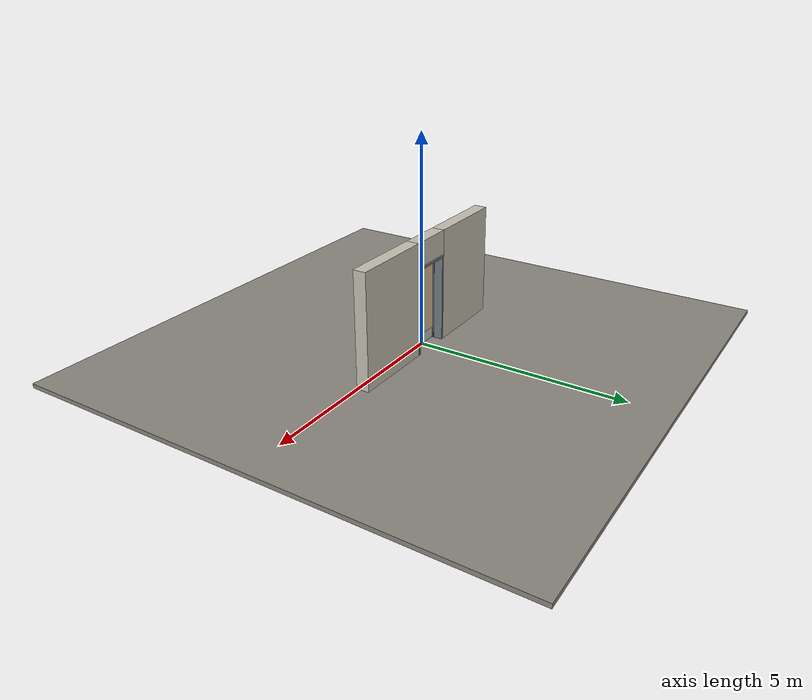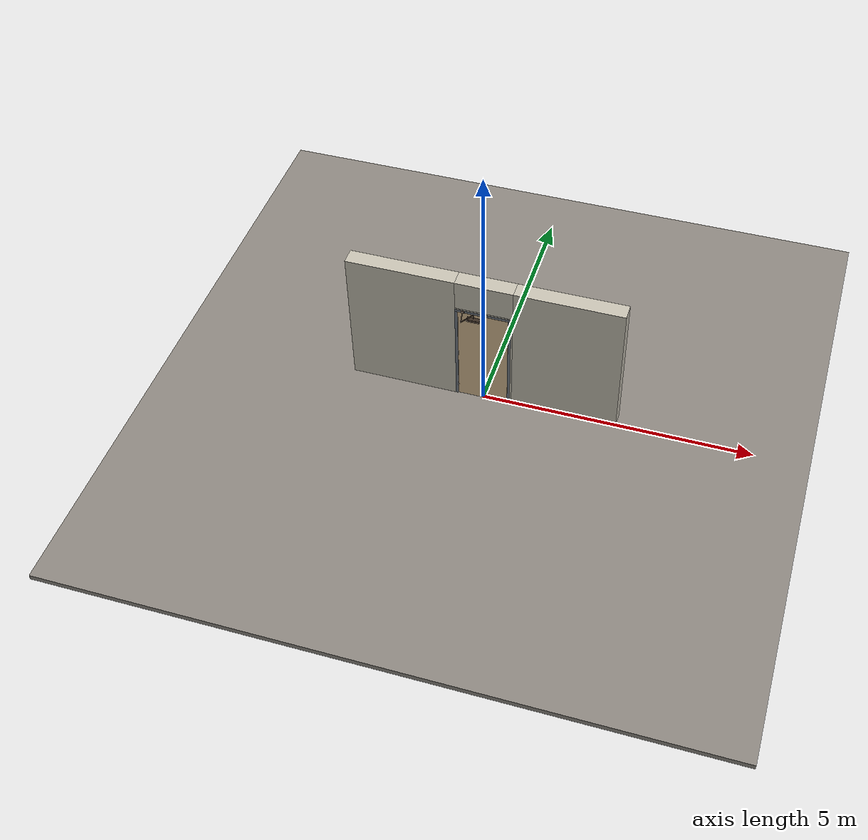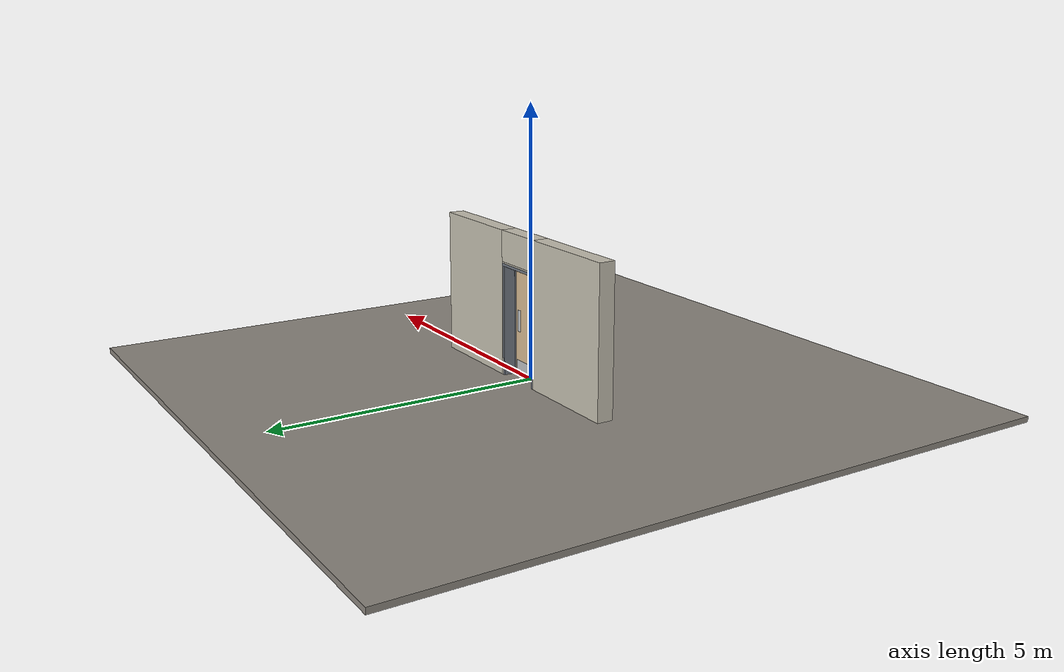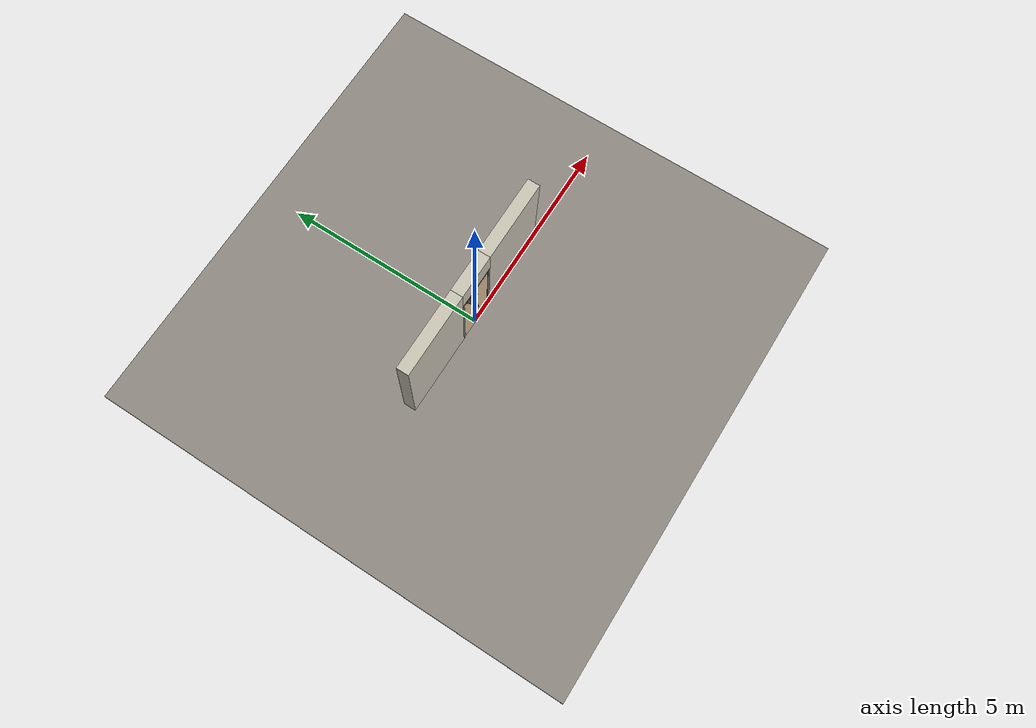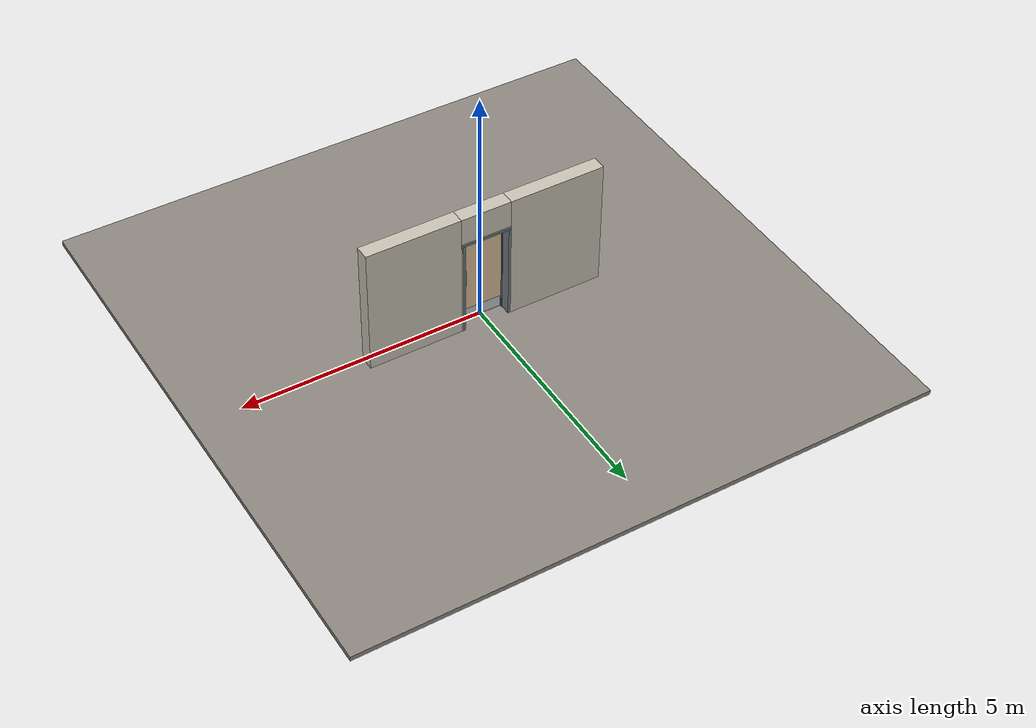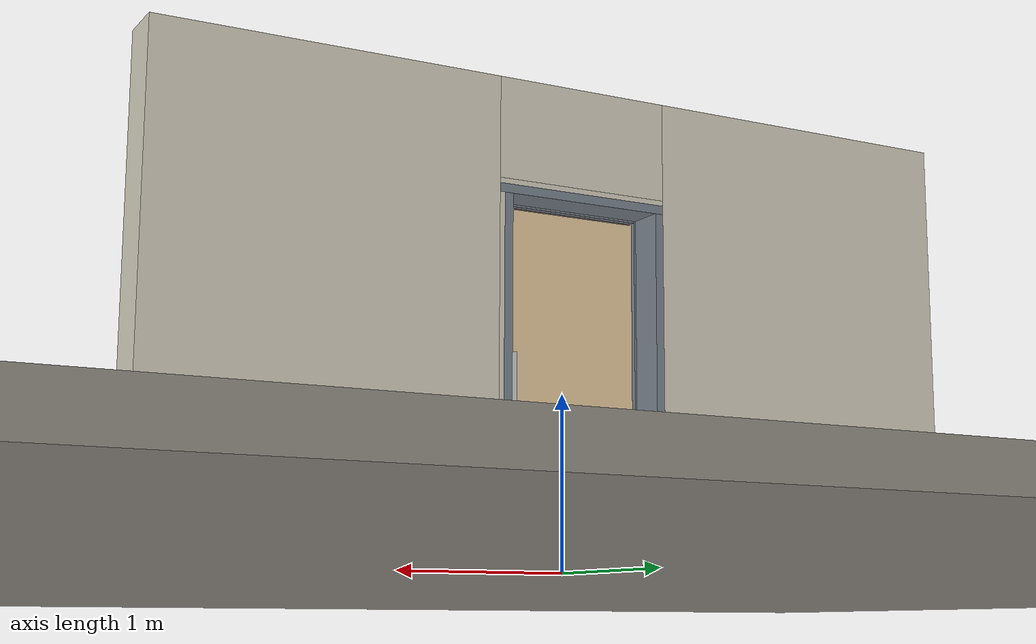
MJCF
<?xml version="1.0" ?>
<mujoco model="db0869_swing_single_full">
  <compiler angle="radian" meshdir="../../hardware" texturedir="../../textures" autolimits="true" inertiafromgeom="false"/>
  <option timestep="0.002" integrator="implicitfast" cone="elliptic" impratio="10" noslip_iterations="3">
    <flag multiccd="enable"/>
  </option>
  <size memory="16M"/>
  <default>
    <geom condim="4" solref="0.005 1" solimp="0.95 0.99 0.001"/>
    <joint solreflimit="0.005 1" solimplimit="0.95 0.99 0.001"/>
    <tendon solreflimit="0.005 1"/>
    <equality solref="0.002 1"/>
  </default>
  <visual>
    <headlight ambient="0.4 0.4 0.4" diffuse="0.7 0.7 0.7" specular="0.2 0.2 0.2"/>
    <quality shadowsize="4096"/>
    <map znear="0.01" zfar="60"/>
  </visual>
  <asset>
    <mesh name="closer_body_b226fdb10b" file="closer_body_b226fdb10b.obj"/>
    <mesh name="hinge_e22b26c0c1" file="hinge_e22b26c0c1.obj"/>
    <mesh name="hinge_jamb_e1d088f8dc" file="hinge_jamb_e1d088f8dc.obj"/>
    <material name="mat_floor" rgba="0.55 0.53 0.5 1" specular="0.2" shininess="0.15" reflectance="0"/>
    <material name="mat_wall" rgba="0.78 0.76 0.7 1" specular="0.2" shininess="0.1" reflectance="0"/>
    <material name="mat_leaf" rgba="0.85 0.74 0.58 1" specular="0.2" shininess="0.5" reflectance="0"/>
    <material name="mat_hinge" rgba="0.65 0.66 0.68 1" specular="0.74" shininess="0.5" reflectance="0.36"/>
    <material name="mat_op_stainless" rgba="0.75 0.76 0.77 1" specular="0.8" shininess="0.65" reflectance="0.4"/>
    <material name="mat_frame" rgba="0.45 0.48 0.52 1" specular="0.32" shininess="0.6" reflectance="0.08"/>
    <material name="mat_seal" rgba="0.1 0.1 0.1 1" specular="0.2" shininess="0.1" reflectance="0"/>
    <material name="mat_closer" rgba="0.22 0.17 0.13 1" specular="0.8" shininess="0.6" reflectance="0.4"/>
    <material name="mat_kick" rgba="0.75 0.76 0.77 1" specular="0.8" shininess="0.65" reflectance="0.4"/>
    <texture name="skybox" type="skybox" builtin="gradient" rgb1="0.6 0.7 0.85" rgb2="0.9 0.92 0.95" width="256" height="256"/>
  </asset>
  <worldbody>
    <light name="sun" pos="1.5 -2.5 4" dir="-0.3 0.5 -0.8" directional="true" diffuse="0.8 0.8 0.8" specular="0.3 0.3 0.3" castshadow="true"/>
    <light name="fill" pos="-1.5 2.5 3" dir="0.3 -0.5 -0.7" directional="true" diffuse="0.35 0.35 0.4" castshadow="false"/>
    <camera name="robot_view" pos="0 -2.421187 1.734312" xyaxes="1 0 0 0 0.26963 0.962964" fovy="52"/>
    <camera name="far_view" pos="0 2.663187 1.734312" xyaxes="-1 0 0 0 -0.26963 0.962964" fovy="52"/>
    <camera name="iso" pos="1.932062 -2.014438 2.141063" xyaxes="0.741536 0.670913 0 -0.242917 0.268487 0.932151" fovy="46"/>
    <camera name="detail_handle" pos="0.5335 -0.679 1.296" xyaxes="0.97561 0.219512 0 -0.070934 0.315262 0.94635" fovy="38"/>
    <geom name="floor" type="box" size="6 6 0.05" pos="0 0 -0.05" material="mat_floor" group="0" contype="1" conaffinity="1" friction="0.8 0.005 0.0001" density="2400"/>
    <geom name="wall_left" type="box" size="0.99475 0.15 1.35" pos="-1.50525 0.121 1.35" material="mat_wall" group="0" contype="1" conaffinity="1" friction="0.6 0.005 0.0001" density="800"/>
    <geom name="wall_right" type="box" size="0.97975 0.15 1.35" pos="1.52025 0.121 1.35" material="mat_wall" group="0" contype="1" conaffinity="1" friction="0.6 0.005 0.0001" density="800"/>
    <geom name="wall_header" type="box" size="0.5255 0.15 0.2875" pos="0.015 0.121 2.4125" material="mat_wall" group="0" contype="1" conaffinity="1" friction="0.6 0.005 0.0001" density="800"/>
    <geom name="hinge_0_jamb" type="mesh" mesh="hinge_jamb_e1d088f8dc" pos="-0.4575 -0.029 0.259" material="mat_hinge" group="1" contype="0" conaffinity="0" density="7850"/>
    <geom name="hinge_1_jamb" type="mesh" mesh="hinge_jamb_e1d088f8dc" pos="-0.4575 -0.029 1.025" material="mat_hinge" group="1" contype="0" conaffinity="0" density="7850"/>
    <geom name="hinge_2_jamb" type="mesh" mesh="hinge_jamb_e1d088f8dc" pos="-0.4575 -0.029 1.861" material="mat_hinge" group="1" contype="0" conaffinity="0" density="7850"/>
    <geom name="jamb_hinge" type="box" size="0.025 0.15 1.0225" pos="-0.4855 0.121 1.0225" material="mat_frame" group="0" contype="1" conaffinity="1" friction="0.6 0.005 0.0001" density="300"/>
    <geom name="jamb_strike" type="box" size="0.025 0.15 1.0225" pos="0.4855 0.121 1.0225" material="mat_frame" group="0" contype="1" conaffinity="1" friction="0.6 0.005 0.0001" density="300"/>
    <geom name="stud_strike" type="box" size="0.015 0.15 1.0225" pos="0.5255 0.121 1.0225" material="mat_wall" group="0" contype="1" conaffinity="1" friction="0.6 0.005 0.0001" density="500"/>
    <geom name="jamb_head" type="box" size="0.5255 0.15 0.025" pos="0.015 0.121 2.07" material="mat_frame" group="0" contype="1" conaffinity="1" friction="0.6 0.005 0.0001" density="300"/>
    <geom name="head_stud" type="box" size="0.5255 0.15 0.015" pos="0.015 0.121 2.11" material="mat_wall" group="0" contype="1" conaffinity="1" friction="0.6 0.005 0.0001" density="500"/>
    <geom name="stop_hinge" type="box" size="0.0055 0.016 1.0225" pos="-0.455 0.0385 1.0225" material="mat_frame" group="0" contype="1" conaffinity="1" friction="0.6 0.005 0.0001" density="300"/>
    <geom name="stop_strike" type="box" size="0.0055 0.016 1.0225" pos="0.455 0.0385 1.0225" material="mat_frame" group="0" contype="1" conaffinity="1" friction="0.6 0.005 0.0001" density="300"/>
    <geom name="stop_head" type="box" size="0.4605 0.016 0.0055" pos="0 0.0385 2.0395" material="mat_frame" group="0" contype="1" conaffinity="1" friction="0.6 0.005 0.0001" density="300"/>
    <geom name="seal_hinge" type="box" size="0.004 0.002 1.0225" pos="-0.4575 0.024 1.0225" material="mat_seal" group="1" contype="0" conaffinity="0" density="1100"/>
    <geom name="seal_strike" type="box" size="0.004 0.002 1.0225" pos="0.4575 0.024 1.0225" material="mat_seal" group="1" contype="0" conaffinity="0" density="1100"/>
    <geom name="seal_head" type="box" size="0.4405 0.002 0.008" pos="0 0.024 2.033" material="mat_seal" group="1" contype="0" conaffinity="0" density="1100"/>
    <geom name="closer_bracket" type="box" size="0.03 0.012 0.014" pos="-0.3605 -0.041 2.075" material="mat_closer" group="1" contype="0" conaffinity="0" density="2700"/>
    <site name="approach_point" pos="0 -1.5 0" quat="1 0 0 0" size="0.05" rgba="0.2 0.9 0.2 0.5" group="4"/>
    <site name="goal_point" pos="0 1.5 0" quat="1 0 0 0" size="0.05" rgba="0.2 0.9 0.2 0.5" group="4"/>
    <site name="door_plane_center" pos="0 0 1.0225" quat="1 0 0 0" size="0.02" rgba="0.2 0.9 0.2 0.5" group="4"/>
    <body name="leaf" pos="-0.4605 0 0">
      <inertial pos="0.439134 -0.006364 1.098994" mass="61.985747" quat="-0.495973 0.480874 0.51043 0.512087" diaginertia="4.085378238 25.769131148 29.792360505"/>
      <joint name="leaf_hinge" type="hinge" axis="0 0 -1" pos="0.003 -0.029 0" limited="true" range="0 1.745329" solreflimit="0.02 1" damping="10.25611" frictionloss="1.386782" stiffness="12.032114" springref="-2.809149" armature="0.02"/>
      <geom name="leaf_slab" type="box" size="0.457 0.022 1.016" pos="0.46 0 1.025" material="mat_leaf" group="0" contype="1" conaffinity="1" friction="0.4 0.005 0.0001" density="1"/>
      <geom name="hinge_0" type="mesh" mesh="hinge_e22b26c0c1" pos="0.003 -0.029 0.259" material="mat_hinge" group="1" contype="0" conaffinity="0" density="7850"/>
      <geom name="hinge_1" type="mesh" mesh="hinge_e22b26c0c1" pos="0.003 -0.029 1.025" material="mat_hinge" group="1" contype="0" conaffinity="0" density="7850"/>
      <geom name="hinge_2" type="mesh" mesh="hinge_e22b26c0c1" pos="0.003 -0.029 1.861" material="mat_hinge" group="1" contype="0" conaffinity="0" density="7850"/>
      <geom name="leaf_push_plate_p" type="box" size="0.05 0.0008 0.2" pos="0.812 0.0228 1.016" material="mat_op_stainless" group="1" contype="0" conaffinity="0" density="7900"/>
      <geom name="closer_body" type="mesh" mesh="closer_body_b226fdb10b" pos="0.3 -0.022 1.952" quat="0.707107 0.707107 0 0" material="mat_closer" group="1" contype="0" conaffinity="0" density="2000"/>
      <geom name="closer_body_col" type="box" size="0.12 0.04 0.03" pos="0.3 -0.062 1.952" material="mat_closer" group="3" contype="1" conaffinity="1" rgba="0.8 0.3 0.3 0.25" friction="0.6 0.005 0.0001" density="2000"/>
      <geom name="closer_pinion_shaft" type="cylinder" size="0.008 0.0615" pos="0.3 -0.064 2.0135" material="mat_closer" group="1" contype="0" conaffinity="0" density="2700"/>
      <geom name="kick_plate_p" type="box" size="0.427 0.0008 0.125" pos="0.46 0.0228 0.144" material="mat_kick" group="2" contype="0" conaffinity="0" density="7900"/>
      <site name="leaf_push_plate_push_p" pos="0.812 0.022 1.016" quat="1 0 0 0" size="0.012" rgba="0.2 0.9 0.2 0.5" group="4"/>
      <site name="leaf_edge_mid" pos="0.917 0 1.016" quat="1 0 0 0" size="0.02" rgba="0.2 0.9 0.2 0.5" group="4"/>
      <body name="closer_arm_main" pos="0.3 -0.064 2.075" quat="0.472212 0 0 -0.881485">
        <inertial pos="0.14 0 0" mass="0.12096" quat="1 0 0 0" diaginertia="0.000003588 0.00079128 0.000792852"/>
        <joint name="closer_pinion" type="hinge" axis="0 0 1" limited="false" damping="0.01" armature="0.002"/>
        <geom name="closer_arm_main_geom" type="box" size="0.14 0.008 0.005" pos="0.14 0 0" material="mat_closer" group="1" contype="0" conaffinity="0" density="2700"/>
        <body name="closer_arm_fore" pos="0.28 0 0" quat="-0.371222 0 0 0.928544">
          <inertial pos="0.128088 0 0" mass="0.076531" quat="1 0 0 0" diaginertia="0.000001771 0.000437665 0.000438201"/>
          <joint name="closer_elbow" type="hinge" axis="0 0 1" limited="false" damping="0.01" armature="0.002"/>
          <geom name="closer_arm_fore_geom" type="box" size="0.1125 0.007 0.004" pos="0.1125 0 0" material="mat_closer" group="1" contype="0" conaffinity="0" density="2700"/>
          <geom name="closer_fore_neck" type="box" size="0.0175 0.003 0.003" pos="0.2425 0 0" material="mat_closer" group="1" contype="0" conaffinity="0" density="2700"/>
          <geom name="closer_fore_pivot" type="cylinder" size="0.005 0.012" pos="0.26 0 0" material="mat_closer" group="1" contype="0" conaffinity="0" density="2700"/>
        </body>
      </body>
    </body>
  </worldbody>
  <equality>
    <connect name="closer_arm_connect" body1="closer_arm_fore" body2="world" anchor="0.26 0 0" active="true"/>
  </equality>
  <contact>
    <exclude body1="closer_arm_main" body2="leaf"/>
    <exclude body1="closer_arm_fore" body2="leaf"/>
    <exclude body1="closer_arm_main" body2="closer_arm_fore"/>
  </contact>
  <sensor>
    <jointpos name="leaf_hinge_pos" joint="leaf_hinge"/>
    <jointvel name="leaf_hinge_vel" joint="leaf_hinge"/>
  </sensor>
</mujoco>
